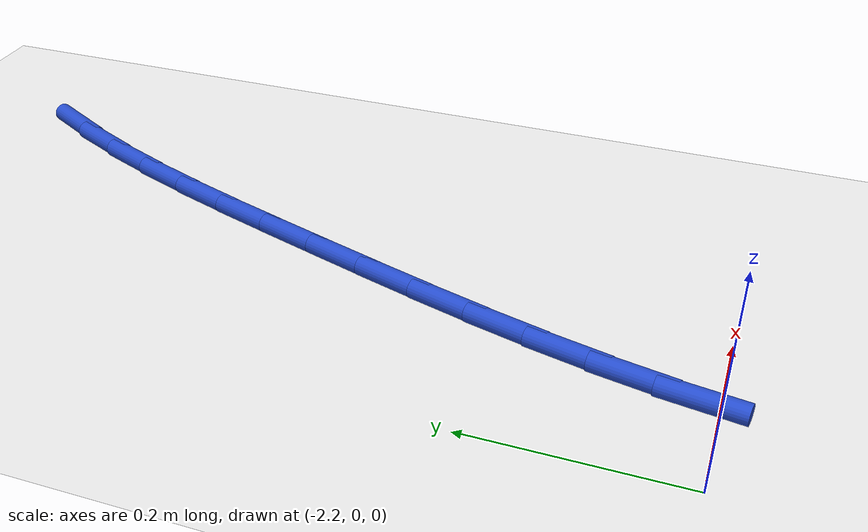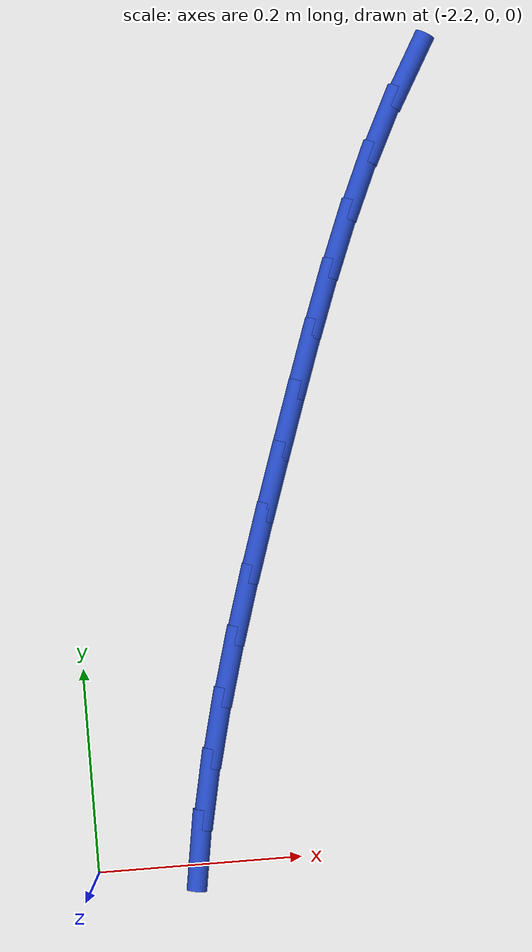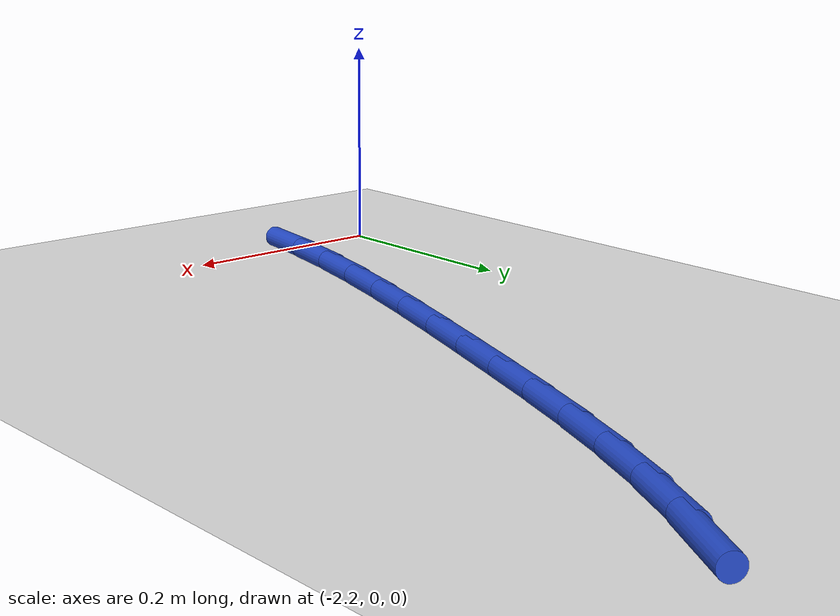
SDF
<sdf version="1.6">
 <world name="default">
  <model name="ground_plane">
   <static>1</static>
   <link name="link">
    <collision name="collision">
     <geometry><plane><normal>0 0 1</normal><size>100 100</size></plane></geometry>
     <surface><friction><ode><mu>100</mu><mu2>50</mu2></ode></friction></surface>
    </collision>
    <visual name="visual">
     <cast_shadows>0</cast_shadows>
     <geometry><plane><normal>0 0 1</normal><size>100 100</size></plane></geometry>
     <material>
      <script><uri>file://media/materials/scripts/gazebo.material</uri><name>Gazebo/WhiteGlow</name></script>
     </material>
    </visual>
   </link>
  </model>
  <model name="line">
   <link name="link_42">
    <pose>-1.8345827418679241 0.7636272671433829 0.01 0 1.57 1.053025835200126</pose>
    <collision name="collision">
     <geometry><cylinder><radius>0.01</radius><length>0.08</length></cylinder></geometry>
    </collision>
    <visual name="visual">
     <material>
      <script><name>Gazebo/Blue</name><uri>file://media/materials/scripts/gazebo.material</uri></script>
     </material>
     <geometry><cylinder><radius>0.01</radius><length>0.08</length></cylinder></geometry>
    </visual>
   </link>
   <link name="link_43">
    <pose>-1.8638445427774015 0.7122551922198543 0.01 0 1.57 1.1116164258418766</pose>
    <collision name="collision">
     <geometry><cylinder><radius>0.01</radius><length>0.08</length></cylinder></geometry>
    </collision>
    <visual name="visual">
     <material>
      <script><name>Gazebo/Blue</name><uri>file://media/materials/scripts/gazebo.material</uri></script>
     </material>
     <geometry><cylinder><radius>0.01</radius><length>0.08</length></cylinder></geometry>
    </visual>
   </link>
   <link name="link_44">
    <pose>-1.890357162556612 0.6586323556839044 0.01 0 1.57 1.1586591467342031</pose>
    <collision name="collision">
     <geometry><cylinder><radius>0.01</radius><length>0.08</length></cylinder></geometry>
    </collision>
    <visual name="visual">
     <material>
      <script><name>Gazebo/Blue</name><uri>file://media/materials/scripts/gazebo.material</uri></script>
     </material>
     <geometry><cylinder><radius>0.01</radius><length>0.08</length></cylinder></geometry>
    </visual>
   </link>
   <link name="link_45">
    <pose>-1.914613186545204 0.6031487319499164 0.01 0 1.57 1.1946834864303904</pose>
    <collision name="collision">
     <geometry><cylinder><radius>0.01</radius><length>0.08</length></cylinder></geometry>
    </collision>
    <visual name="visual">
     <material>
      <script><name>Gazebo/Blue</name><uri>file://media/materials/scripts/gazebo.material</uri></script>
     </material>
     <geometry><cylinder><radius>0.01</radius><length>0.08</length></cylinder></geometry>
    </visual>
   </link>
   <link name="link_46">
    <pose>-1.9371052000828255 0.5461942954322732 0.01 0 1.57 1.2202481568448897</pose>
    <collision name="collision">
     <geometry><cylinder><radius>0.01</radius><length>0.08</length></cylinder></geometry>
    </collision>
    <visual name="visual">
     <material>
      <script><name>Gazebo/Blue</name><uri>file://media/materials/scripts/gazebo.material</uri></script>
     </material>
     <geometry><cylinder><radius>0.01</radius><length>0.08</length></cylinder></geometry>
    </visual>
   </link>
   <link name="link_47">
    <pose>-1.9583257885091243 0.4881590205453583 0.01 0 1.57 1.2358276177585141</pose>
    <collision name="collision">
     <geometry><cylinder><radius>0.01</radius><length>0.08</length></cylinder></geometry>
    </collision>
    <visual name="visual">
     <material>
      <script><name>Gazebo/Blue</name><uri>file://media/materials/scripts/gazebo.material</uri></script>
     </material>
     <geometry><cylinder><radius>0.01</radius><length>0.08</length></cylinder></geometry>
    </visual>
   </link>
   <link name="link_48">
    <pose>-1.9787675371637479 0.42943288170355454 0.01 0 1.57 1.2420907315365897</pose>
    <collision name="collision">
     <geometry><cylinder><radius>0.01</radius><length>0.08</length></cylinder></geometry>
    </collision>
    <visual name="visual">
     <material>
      <script><name>Gazebo/Blue</name><uri>file://media/materials/scripts/gazebo.material</uri></script>
     </material>
     <geometry><cylinder><radius>0.01</radius><length>0.08</length></cylinder></geometry>
    </visual>
   </link>
   <link name="link_49">
    <pose>-1.9989030337530171 0.37039822265485073 0.01 0 1.57 1.2468485621391752</pose>
    <collision name="collision">
     <geometry><cylinder><radius>0.01</radius><length>0.08</length></cylinder></geometry>
    </collision>
    <visual name="visual">
     <material>
      <script><name>Gazebo/Blue</name><uri>file://media/materials/scripts/gazebo.material</uri></script>
     </material>
     <geometry><cylinder><radius>0.01</radius><length>0.08</length></cylinder></geometry>
    </visual>
   </link>
   <link name="link_50">
    <pose>-2.0187579554881423 0.31126685572281815 0.01 0 1.57 1.257704706976722</pose>
    <collision name="collision">
     <geometry><cylinder><radius>0.01</radius><length>0.08</length></cylinder></geometry>
    </collision>
    <visual name="visual">
     <material>
      <script><name>Gazebo/Blue</name><uri>file://media/materials/scripts/gazebo.material</uri></script>
     </material>
     <geometry><cylinder><radius>0.01</radius><length>0.08</length></cylinder></geometry>
    </visual>
   </link>
   <link name="link_51">
    <pose>-2.0379181930349013 0.2520827801524523 0.01 0 1.57 1.2751155851808007</pose>
    <collision name="collision">
     <geometry><cylinder><radius>0.01</radius><length>0.08</length></cylinder></geometry>
    </collision>
    <visual name="visual">
     <material>
      <script><name>Gazebo/Blue</name><uri>file://media/materials/scripts/gazebo.material</uri></script>
     </material>
     <geometry><cylinder><radius>0.01</radius><length>0.08</length></cylinder></geometry>
    </visual>
   </link>
   <link name="link_52">
    <pose>-2.0559510643310097 0.19288290823553003 0.01 0 1.57 1.2993117946799906</pose>
    <collision name="collision">
     <geometry><cylinder><radius>0.01</radius><length>0.08</length></cylinder></geometry>
    </collision>
    <visual name="visual">
     <material>
      <script><name>Gazebo/Blue</name><uri>file://media/materials/scripts/gazebo.material</uri></script>
     </material>
     <geometry><cylinder><radius>0.01</radius><length>0.08</length></cylinder></geometry>
    </visual>
   </link>
   <link name="link_53">
    <pose>-2.072423887314184 0.133704152263828 0.01 0 1.57 1.330600632203105</pose>
    <collision name="collision">
     <geometry><cylinder><radius>0.01</radius><length>0.08</length></cylinder></geometry>
    </collision>
    <visual name="visual">
     <material>
      <script><name>Gazebo/Blue</name><uri>file://media/materials/scripts/gazebo.material</uri></script>
     </material>
     <geometry><cylinder><radius>0.01</radius><length>0.08</length></cylinder></geometry>
    </visual>
   </link>
   <link name="link_54">
    <pose>-2.086903979922139 0.07458342452912303 0.01 0 1.57 1.369339330329857</pose>
    <collision name="collision">
     <geometry><cylinder><radius>0.01</radius><length>0.08</length></cylinder></geometry>
    </collision>
    <visual name="visual">
     <material>
      <script><name>Gazebo/Blue</name><uri>file://media/materials/scripts/gazebo.material</uri></script>
     </material>
     <geometry><cylinder><radius>0.01</radius><length>0.08</length></cylinder></geometry>
    </visual>
   </link>
   <link name="link_55">
    <pose>-2.0989586600925905 0.015557637323191854 0.01 0 1.57 1.415892266680008</pose>
    <collision name="collision">
     <geometry><cylinder><radius>0.01</radius><length>0.08</length></cylinder></geometry>
    </collision>
    <visual name="visual">
     <material>
      <script><name>Gazebo/Blue</name><uri>file://media/materials/scripts/gazebo.material</uri></script>
     </material>
     <geometry><cylinder><radius>0.01</radius><length>0.08</length></cylinder></geometry>
    </visual>
   </link>
  </model>
 </world>
</sdf>
